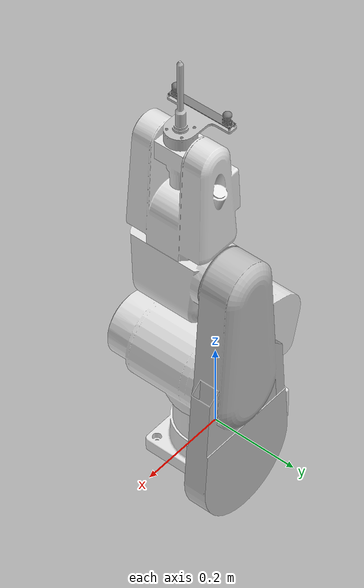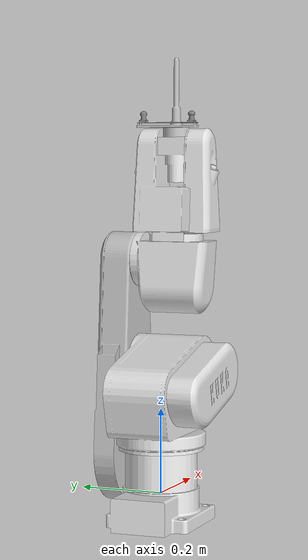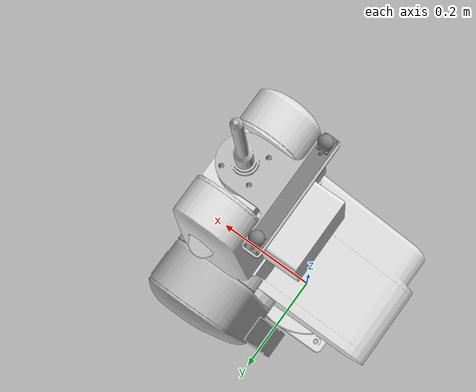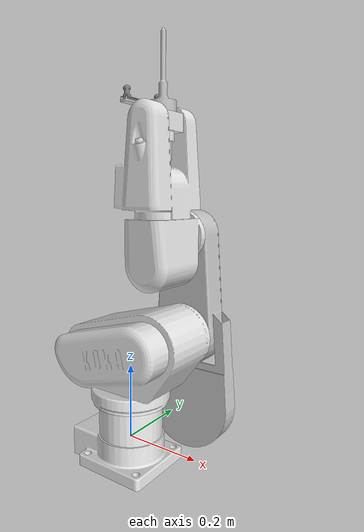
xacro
<?xml version="1.0"?>
<robot xmlns:xacro="http://wiki.ros.org/xacro" name="m6r">

    <link name="world"/>

    <joint name="world_to_base" type="fixed">
        <parent link="world"/>
        <child link="base_link"/>
        <origin xyz="0 0 -0.07" rpy="0 0 0"/>
    </joint>

    <xacro:include filename="m6r_0110.xacro"/>
    <xacro:include filename="gazebo.ros2_control.xacro"/>
    <xacro:include filename="m6r.gazebo.xacro"/>

    <xacro:include filename="camera2.xacro"/>

</robot>

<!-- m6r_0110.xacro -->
<robot xmlns:xacro="http://wiki.ros.org/xacro">
  <link
    name="base_link">
    <inertial>
      <origin
        xyz="-0.0146959562730705 -1.31808177654722E-09 0.0738790283475741"
        rpy="0 0 0" />
      <mass
        value="5.31276956078926" />
      <inertia
        ixx="0.0254280679798273"
        ixy="-3.83756468568407E-10"
        ixz="-0.00246652568977196"
        iyy="0.0327484488605481"
        iyz="-4.23043782522762E-10"
        izz="0.0305803894465856" />
    </inertial>
    <visual>
      <origin
        xyz="0 0 0"
        rpy="0 0 0" />
      <geometry>
        <mesh
          filename="package://m6r_description/meshes/m6r_0110/base_link.STL" />
      </geometry>
      <material
        name="">
        <color
          rgba="0.894117647058823 0.894117647058823 0.894117647058823 1" />
      </material>
    </visual>
    <collision>
      <origin
        xyz="0 0 0"
        rpy="0 0 0" />
      <geometry>
        <mesh
          filename="package://m6r_description/meshes/m6r_0110/base_link.STL" />
      </geometry>
    </collision>
  </link>
  <link
    name="waist_link">
    <inertial>
      <origin
        xyz="0.0139701613082039 -0.015936284472385 0.132965338967223"
        rpy="0 0 0" />
      <mass
        value="13.4868898164828" />
      <inertia
        ixx="0.103115065826466"
        ixy="-0.0027942922654768"
        ixz="-0.0175187461405487"
        iyy="0.154263710369968"
        iyz="0.00418239915297628"
        izz="0.150904232632326" />
    </inertial>
    <visual>
      <origin
        xyz="0 0 0"
        rpy="0 0 0" />
      <geometry>
        <mesh
          filename="package://m6r_description/meshes/m6r_0110/waist_link.STL" />
      </geometry>
      <material
        name="">
        <color
          rgba="0.894117647058823 0.894117647058823 0.894117647058823 1" />
      </material>
    </visual>
    <collision>
      <origin
        xyz="0 0 0"
        rpy="0 0 0" />
      <geometry>
        <mesh
          filename="package://m6r_description/meshes/m6r_0110/waist_link.STL" />
      </geometry>
    </collision>
  </link>
  <joint
    name="joint1"
    type="revolute">
    <origin
      xyz="0 0 0.175"
      rpy="0 0 0" />
    <parent
      link="base_link" />
    <child
      link="waist_link" />
    <axis
      xyz="0 0 1" />
    <limit
      lower="-3.14"
      upper="3.14"
      effort="50"
      velocity="100" />
  </joint>
  <link
    name="shoulder_link">
    <inertial>
      <origin
        xyz="-0.0393421032855981 0.0417793152023532 0.0773583929062565"
        rpy="0 0 0" />
      <mass
        value="5.239440252985" />
      <inertia
        ixx="0.0539250127743356"
        ixy="1.38922530733157E-06"
        ixz="0.0203431860572253"
        iyy="0.0726126815272468"
        iyz="-2.72845406496887E-06"
        izz="0.0242701394994817" />
    </inertial>
    <visual>
      <origin
        xyz="0 0 0"
        rpy="0 0 0" />
      <geometry>
        <mesh
          filename="package://m6r_description/meshes/m6r_0110/shoulder_link.STL" />
      </geometry>
      <material
        name="">
        <color
          rgba="0.752941176470588 0.752941176470588 0.752941176470588 1" />
      </material>
    </visual>
    <collision>
      <origin
        xyz="0 0 0"
        rpy="0 0 0" />
      <geometry>
        <mesh
          filename="package://m6r_description/meshes/m6r_0110/shoulder_link.STL" />
      </geometry>
    </collision>
  </link>
  <joint
    name="joint2"
    type="revolute">
    <origin
      xyz="0.1 0.094 0.175"
      rpy="0 0.47024 0" />
    <parent
      link="waist_link" />
    <child
      link="shoulder_link" />
    <axis
      xyz="0 1 0" />
    <limit
      lower="-3.14"
      upper="3.14"
      effort="50"
      velocity="100" />
  </joint>
  <link
    name="elbow_link">
    <inertial>
      <origin
        xyz="-0.0324458881612945 -0.0899423500054787 6.19472507663449E-05"
        rpy="0 0 0" />
      <mass
        value="3.1983360651658" />
      <inertia
        ixx="0.0112232922596549"
        ixy="-0.000413394805888793"
        ixz="-6.08808867039753E-08"
        iyy="0.0102793012206642"
        iyz="-6.82240237651006E-08"
        izz="0.0146558013438073" />
    </inertial>
    <visual>
      <origin
        xyz="0 0 0"
        rpy="0 0 0" />
      <geometry>
        <mesh
          filename="package://m6r_description/meshes/m6r_0110/elbow_link.STL" />
      </geometry>
      <material
        name="">
        <color
          rgba="0.894117647058823 0.894117647058823 0.894117647058823 1" />
      </material>
    </visual>
    <collision>
      <origin
        xyz="0 0 0"
        rpy="0 0 0" />
      <geometry>
        <mesh
          filename="package://m6r_description/meshes/m6r_0110/elbow_link.STL" />
      </geometry>
    </collision>
  </link>
  <joint
    name="joint3"
    type="revolute">
    <origin
      xyz="-0.12007 0 0.23624"
      rpy="3.1416 -1.1006 3.1416" />
    <parent
      link="shoulder_link" />
    <child
      link="elbow_link" />
    <axis
      xyz="0 1 0" />
    <limit
      lower="-3.14"
      upper="3.14"
      effort="50"
      velocity="100" />
  </joint>
  <link
    name="forearm_link">
    <inertial>
      <origin
        xyz="0.109668118306563 -4.13962910319617E-05 6.31873191234977E-05"
        rpy="0 0 0" />
      <mass
        value="3.39321721908934" />
      <inertia
        ixx="0.0140130697605679"
        ixy="9.48980902634125E-06"
        ixz="-9.8999024639953E-07"
        iyy="0.0190947215800425"
        iyz="-1.85475880373875E-07"
        izz="0.0280985723226197" />
    </inertial>
    <visual>
      <origin
        xyz="0 0 0"
        rpy="0 0 0" />
      <geometry>
        <mesh
          filename="package://m6r_description/meshes/m6r_0110/forearm_link.STL" />
      </geometry>
      <material
        name="">
        <color
          rgba="0.894117647058823 0.894117647058823 0.894117647058823 1" />
      </material>
    </visual>
    <collision>
      <origin
        xyz="0 0 0"
        rpy="0 0 0" />
      <geometry>
        <mesh
          filename="package://m6r_description/meshes/m6r_0110/forearm_link.STL" />
      </geometry>
    </collision>
  </link>
  <joint
    name="joint4"
    type="revolute">
    <origin
      xyz="0.045 -0.094 0"
      rpy="0 0 0" />
    <parent
      link="elbow_link" />
    <child
      link="forearm_link" />
    <axis
      xyz="1 0 0" />
    <limit
      lower="-3.14"
      upper="3.14"
      effort="50"
      velocity="100" />
  </joint>
  <link
    name="wriste_pitch">
    <inertial>
      <origin
        xyz="-0.0171303931049135 5.18595840840373E-15 6.24160410160612E-05"
        rpy="0 0 0" />
      <mass
        value="0.295781549289781" />
      <inertia
        ixx="0.000182023567605451"
        ixy="5.17679923091508E-20"
        ixz="3.12977259322246E-20"
        iyy="0.000310680621706772"
        iyz="-2.4319822037332E-20"
        izz="0.000308656048501104" />
    </inertial>
    <visual>
      <origin
        xyz="0 0 0"
        rpy="0 0 0" />
      <geometry>
        <mesh
          filename="package://m6r_description/meshes/m6r_0110/wriste_pitch.STL" />
      </geometry>
      <material
        name="">
        <color
          rgba="0.894117647058823 0.894117647058823 0.894117647058823 1" />
      </material>
    </visual>
    <collision>
      <origin
        xyz="0 0 0"
        rpy="0 0 0" />
      <geometry>
        <mesh
          filename="package://m6r_description/meshes/m6r_0110/wriste_pitch.STL" />
      </geometry>
    </collision>
  </link>
  <joint
    name="joint5"
    type="revolute">
    <origin
      xyz="0.225 0 0"
      rpy="0 0 0" />
    <parent
      link="forearm_link" />
    <child
      link="wriste_pitch" />
    <axis
      xyz="0 1 0" />
    <limit
      lower="-3.14"
      upper="3.14"
      effort="50"
      velocity="100" />
  </joint>
  <link
    name="wriste_roll">
    <inertial>
      <origin
        xyz="-0.14586 1.4401E-06 -0.0083042"
        rpy="0 0 0" />
      <mass
        value="0.24032" />
      <inertia
        ixx="0.00019091"
        ixy="6.6371E-09"
        ixz="-3.8831E-07"
        iyy="0.00015506"
        iyz="-2.8116E-09"
        izz="0.00019702" />
    </inertial>
    <visual>
      <origin
        xyz="0 0 0"
        rpy="0 0 0" />
      <geometry>
        <mesh
          filename="package://m6r_description/meshes/m6r_0110/wriste_roll.STL" />
      </geometry>
      <material
        name="">
        <color
          rgba="0.75294 0.75294 0.75294 1" />
      </material>
    </visual>
    <collision>
      <origin
        xyz="0 0 0"
        rpy="0 0 0" />
      <geometry>
        <mesh
          filename="package://m6r_description/meshes/m6r_0110/wriste_roll.STL" />
      </geometry>
    </collision>
  </link>
  <joint
    name="joint6"
    type="revolute">
    <origin
      xyz="0.208 0 6.2416E-05"
      rpy="3.1416 0 0" />
    <parent
      link="wriste_pitch" />
    <child
      link="wriste_roll" />
    <axis
      xyz="-1 0 0" />
    <limit
      lower="-3.14"
      upper="3.14"
      effort="50"
      velocity="100" />
  </joint>

</robot>

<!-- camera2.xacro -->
<robot xmlns:xacro="http://www.ros.org/wiki/xacro">

    <material name="gray">
        <color rgba="0.5 0.5 0.5 1"/>
    </material>

    <joint name="camera_joint" type="fixed">
        <origin xyz="-0.155 0 -0.059" rpy="0 -0.00015 0"/>
        <parent link="wriste_roll" />
        <child link="camera_link" />
    </joint>

    <link name="camera_link">
        <inertial>
            <origin xyz="0 0 0" rpy="0 0 0" />
            <mass value="0.012" />
            <inertia ixx="0.0001" ixy="0" ixz="0" iyy="0.0001" iyz="0" izz="0.0001" />
        </inertial>

        <visual>
            <origin xyz="0 0 0" rpy="3.14 0 1.57" />
            <geometry>
                <mesh filename="package://m6r_description/meshes/m6r_0110/camera.STL" />
            </geometry>
            <material name="gray"/>
        </visual>

        <collision>
            <origin xyz="0 0 0" rpy="0 0 0" />
            <geometry>
                <box size="0.05 0.03 0.03"/>
            </geometry>
        </collision>
    </link>

    <joint name="camera_optical_joint" type="fixed">
        <origin xyz="0 0 0" rpy="1.57 0.0 0.0" />
        <parent link="camera_link" />
        <child link="camera_link_optical" />
    </joint>

    <link name="camera_link_optical">
        <inertial>
            <mass value="0.001" />
            <inertia ixx="0.0001" ixy="0" ixz="0" iyy="0.0001" iyz="0" izz="0.0001" />
        </inertial>
    </link>

    <gazebo reference="camera_link">
        <material>Gazebo/Gray</material>

        <sensor name="camera" type="camera">
            <pose>0 0 0 0 0 0</pose>
            <visualize>true</visualize>
            <update_rate>10</update_rate>
            <camera>
                <horizontal_fov>1.089</horizontal_fov>
                <image>
                    <format>R8G8B8</format>
                    <width>640</width>
                    <height>480</height>
                </image>
                <clip>
                    <near>0.05</near>
                    <far>8.0</far>
                </clip>
                <lens>
                    <intrinsics>
                        <fx>500</fx>
                        <fy>500</fy>
                        <cx>320</cx>
                        <cy>240</cy>
                        <s>0</s>
                    </intrinsics>
                </lens>
            </camera>
            <plugin name="camera_controller" filename="libgazebo_ros_camera.so">
                <ros>
                    <namespace>/</namespace>
                    <remapping>image_raw:=camera/image_raw</remapping>
                    <remapping>camera_info:=camera/camera_info</remapping>
                </ros>
                <frame_name>camera_link_optical</frame_name>
                <hack_baseline>0.07</hack_baseline>
            </plugin>
        </sensor>
    </gazebo>

</robot>
